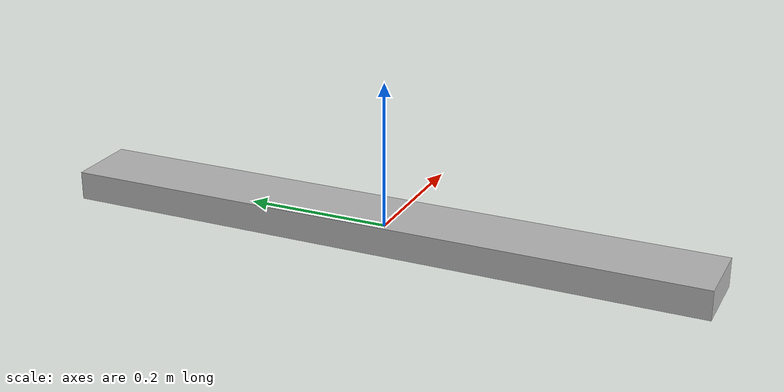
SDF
<?xml version='1.0'?>
<sdf version='1.7'>
  <model name='testbox'>
    <link name='link'>
      <pose>0 0 0 0 0 0</pose>
      <visual name='visual'>
        <geometry>
          <box>
            <size>0.1 0.9 0.04</size>
          </box>
        </geometry>
        <material>
          <script>
	          <uri>/root/workspace/self_gazebo_models/testbox/materials/scripts</uri>
            <uri>/root/workspace/self_gazebo_models/testbox/materials/textures</uri>
            <name>TestZone/testbox</name>
          </script>
        </material>
      </visual>
      <collision name='collision'>
        <geometry>
          <box>
            <size>0.1 0.9 0.04</size>
          </box>
        </geometry>
      </collision>
    </link>
    <static>1</static>
    <allow_auto_disable>1</allow_auto_disable>
  </model>
</sdf>
